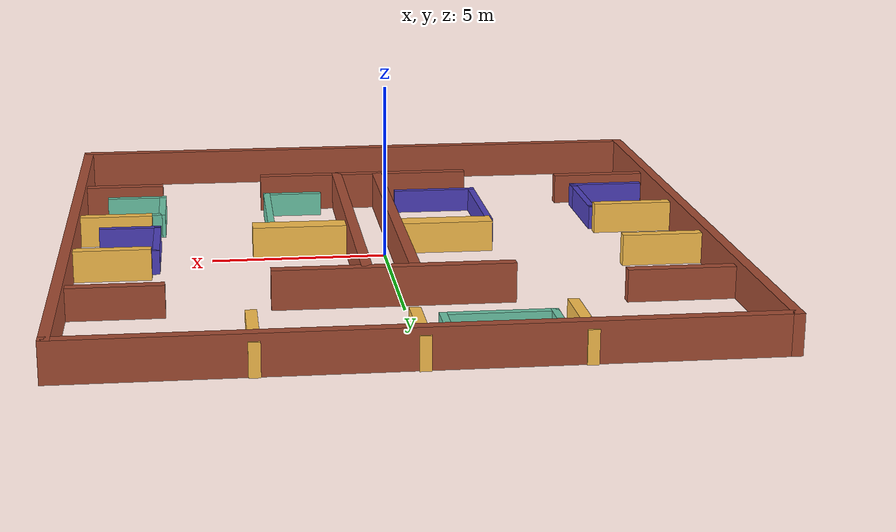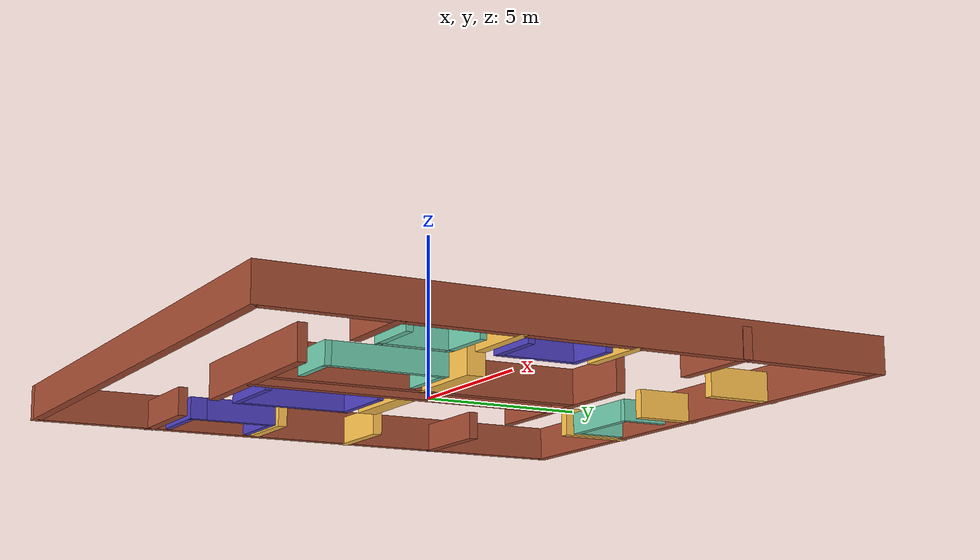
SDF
<?xml version='1.0'?>
<sdf version='1.7'>
  <model name='parking'>
    <pose>-0.068695 0.08748 0 0 -0 0</pose>
    <link name='Wall_12'>
      <collision name='Wall_12_Collision'>
        <geometry>
          <box>
            <size>10.15 0.3 1.1</size>
          </box>
        </geometry>
        <pose>0 0 0.55 0 -0 0</pose>
      </collision>
      <visual name='Wall_12_Visual'>
        <pose>0 0 0.55 0 -0 0</pose>
        <geometry>
          <box>
            <size>10.15 0.3 1.1</size>
          </box>
        </geometry>
        <material>
          <script>
            <uri>file://media/materials/scripts/gazebo.material</uri>
            <name>Gazebo/Bricks</name>
          </script>
          <ambient>1 1 1 1</ambient>
        </material>
        <meta>
          <layer>0</layer>
        </meta>
      </visual>
      <pose>-0.256305 -0.628008 0 0 -0 -1.5708</pose>
    </link>
    <link name='Wall_14'>
      <collision name='Wall_14_Collision'>
        <geometry>
          <box>
            <size>10.15 0.3 1.1</size>
          </box>
        </geometry>
        <pose>0 0 0.55 0 -0 0</pose>
      </collision>
      <visual name='Wall_14_Visual'>
        <pose>0 0 0.55 0 -0 0</pose>
        <geometry>
          <box>
            <size>10.15 0.3 1.1</size>
          </box>
        </geometry>
        <material>
          <script>
            <uri>file://media/materials/scripts/gazebo.material</uri>
            <name>Gazebo/Bricks</name>
          </script>
          <ambient>1 1 1 1</ambient>
        </material>
        <meta>
          <layer>0</layer>
        </meta>
      </visual>
      <pose>1.0272 -0.68151 0 0 -0 -1.5708</pose>
    </link>
    <link name='Wall_2'>
      <collision name='Wall_2_Collision'>
        <geometry>
          <box>
            <size>18.9001 0.3 1.1</size>
          </box>
        </geometry>
        <pose>0 0 0.55 0 -0 0</pose>
      </collision>
      <visual name='Wall_2_Visual'>
        <pose>0 0 0.55 0 -0 0</pose>
        <geometry>
          <box>
            <size>18.9001 0.3 1.1</size>
          </box>
        </geometry>
        <material>
          <script>
            <uri>file://media/materials/scripts/gazebo.material</uri>
            <name>Gazebo/Bricks</name>
          </script>
          <ambient>1 1 1 1</ambient>
        </material>
        <meta>
          <layer>0</layer>
        </meta>
      </visual>
      <pose>-9.03131 -0.02648 0 0 -0 -1.5708</pose>
    </link>
    <link name='Wall_22'>
      <collision name='Wall_22_Collision'>
        <geometry>
          <box>
            <size>3.2 0.3 0.9</size>
          </box>
        </geometry>
        <pose>0 0 0.45 0 -0 0</pose>
      </collision>
      <visual name='Wall_22_Visual'>
        <pose>0 0 0.45 0 -0 0</pose>
        <geometry>
          <box>
            <size>3.2 0.3 0.9</size>
          </box>
        </geometry>
        <material>
          <script>
            <uri>file://media/materials/scripts/gazebo.material</uri>
            <name>Gazebo/Bricks</name>
          </script>
          <ambient>1 1 1 1</ambient>
        </material>
        <meta>
          <layer>0</layer>
        </meta>
      </visual>
      <pose>-7.6348 -5.547 0 0 -0 0</pose>
    </link>
    <link name='Wall_24'>
      <collision name='Wall_24_Collision'>
        <geometry>
          <box>
            <size>6.55 0.3 1.1</size>
          </box>
        </geometry>
        <pose>0 0 0.55 0 -0 0</pose>
      </collision>
      <visual name='Wall_24_Visual'>
        <pose>0 0 0.55 0 -0 0</pose>
        <geometry>
          <box>
            <size>6.55 0.3 1.1</size>
          </box>
        </geometry>
        <material>
          <script>
            <uri>file://media/materials/scripts/gazebo.material</uri>
            <name>Gazebo/Bricks</name>
          </script>
          <ambient>1 1 1 1</ambient>
        </material>
        <meta>
          <layer>0</layer>
        </meta>
      </visual>
      <pose>0.193192 -5.65451 0 0 -0 0</pose>
    </link>
    <link name='Wall_28'>
      <collision name='Wall_28_Collision'>
        <geometry>
          <box>
            <size>2.65 0.3 0.9</size>
          </box>
        </geometry>
        <pose>0 0 0.45 0 -0 0</pose>
      </collision>
      <visual name='Wall_28_Visual'>
        <pose>0 0 0.45 0 -0 0</pose>
        <geometry>
          <box>
            <size>2.65 0.3 0.9</size>
          </box>
        </geometry>
        <material>
          <script>
            <uri>file://media/materials/scripts/gazebo.material</uri>
            <name>Gazebo/Bricks</name>
          </script>
          <ambient>1 0.764706 0.305882 1</ambient>
        </material>
        <meta>
          <layer>0</layer>
        </meta>
      </visual>
      <pose>7.87419 -5.54751 0 0 -0 0</pose>
    </link>
    <link name='Wall_30'>
      <collision name='Wall_30_Collision'>
        <geometry>
          <box>
            <size>6.55 0.3 1.1</size>
          </box>
        </geometry>
        <pose>0 0 0.55 0 -0 0</pose>
      </collision>
      <visual name='Wall_30_Visual'>
        <pose>0 0 0.55 0 -0 0</pose>
        <geometry>
          <box>
            <size>6.55 0.3 1.1</size>
          </box>
        </geometry>
        <material>
          <script>
            <uri>file://media/materials/scripts/gazebo.material</uri>
            <name>Gazebo/Bricks</name>
          </script>
          <ambient>1 1 1 1</ambient>
        </material>
        <meta>
          <layer>0</layer>
        </meta>
      </visual>
      <pose>0.300695 4.40399 0 0 -0 0</pose>
    </link>
    <link name='Wall_32'>
      <collision name='Wall_32_Collision'>
        <geometry>
          <box>
            <size>3.15 0.3 0.9</size>
          </box>
        </geometry>
        <pose>0 0 0.45 0 -0 0</pose>
      </collision>
      <visual name='Wall_32_Visual'>
        <pose>0 0 0.45 0 -0 0</pose>
        <geometry>
          <box>
            <size>3.15 0.3 0.9</size>
          </box>
        </geometry>
        <material>
          <script>
            <uri>file://media/materials/scripts/gazebo.material</uri>
            <name>Gazebo/Bricks</name>
          </script>
          <ambient>1 1 1 1</ambient>
        </material>
        <meta>
          <layer>0</layer>
        </meta>
      </visual>
      <pose>-7.4988 4.725 0 0 -0 0</pose>
    </link>
    <link name='Wall_34'>
      <collision name='Wall_34_Collision'>
        <geometry>
          <box>
            <size>2.90022 0.3 0.9</size>
          </box>
        </geometry>
        <pose>0 0 0.45 0 -0 0</pose>
      </collision>
      <visual name='Wall_34_Visual'>
        <pose>0 0 0.45 0 -0 0</pose>
        <geometry>
          <box>
            <size>2.90022 0.3 0.9</size>
          </box>
        </geometry>
        <material>
          <script>
            <uri>file://media/materials/scripts/gazebo.material</uri>
            <name>Gazebo/Bricks</name>
          </script>
          <ambient>1 1 1 1</ambient>
        </material>
        <meta>
          <layer>0</layer>
        </meta>
      </visual>
      <pose>7.7847 4.72501 0 0 -0 0</pose>
    </link>
    <link name='Wall_36'>
      <collision name='Wall_36_Collision'>
        <geometry>
          <box>
            <size>2.95 0.6 0.9</size>
          </box>
        </geometry>
        <pose>0 0 0.45 0 -0 0</pose>
      </collision>
      <visual name='Wall_36_Visual'>
        <pose>0 0 0.45 0 -0 0</pose>
        <geometry>
          <box>
            <size>2.95 0.6 0.9</size>
          </box>
        </geometry>
        <material>
          <script>
            <uri>file://media/materials/scripts/gazebo.material</uri>
            <name>Gazebo/Grey</name>
          </script>
          <ambient>1 0.764706 0.305882 1</ambient>
        </material>
        <meta>
          <layer>0</layer>
        </meta>
      </visual>
      <pose>-1.64981 -0.571013 0 0 -0 0</pose>
    </link>
    <link name='Wall_38'>
      <collision name='Wall_38_Collision'>
        <geometry>
          <box>
            <size>2.95 0.6 0.9</size>
          </box>
        </geometry>
        <pose>0 0 0.45 0 -0 0</pose>
      </collision>
      <visual name='Wall_38_Visual'>
        <pose>0 0 0.45 0 -0 0</pose>
        <geometry>
          <box>
            <size>2.95 0.6 0.9</size>
          </box>
        </geometry>
        <material>
          <script>
            <uri>file://media/materials/scripts/gazebo.material</uri>
            <name>Gazebo/Grey</name>
          </script>
          <ambient>1 0.764706 0.305882 1</ambient>
        </material>
        <meta>
          <layer>0</layer>
        </meta>
      </visual>
      <pose>2.4167 -0.571013 0 0 -0 0</pose>
    </link>
    <link name='Wall_4'>
      <collision name='Wall_4_Collision'>
        <geometry>
          <box>
            <size>18.4 0.3 1.1</size>
          </box>
        </geometry>
        <pose>0 0 0.55 0 -0 0</pose>
      </collision>
      <visual name='Wall_4_Visual'>
        <pose>0 0 0.55 0 -0 0</pose>
        <geometry>
          <box>
            <size>18.4 0.3 1.1</size>
          </box>
        </geometry>
        <material>
          <script>
            <uri>file://media/materials/scripts/gazebo.material</uri>
            <name>Gazebo/Bricks</name>
          </script>
          <ambient>1 1 1 1</ambient>
        </material>
        <meta>
          <layer>0</layer>
        </meta>
      </visual>
      <pose>0.018695 -9.32648 0 0 -0 0</pose>
    </link>
    <link name='Wall_40'>
      <collision name='Wall_40_Collision'>
        <geometry>
          <box>
            <size>2.39994 0.3 0.9</size>
          </box>
        </geometry>
        <pose>0 0 0.45 0 -0 0</pose>
      </collision>
      <visual name='Wall_40_Visual'>
        <pose>0 0 0.45 0 -0 0</pose>
        <geometry>
          <box>
            <size>2.39994 0.3 0.9</size>
          </box>
        </geometry>
        <material>
          <script>
            <uri>file://media/materials/scripts/gazebo.material</uri>
            <name>Gazebo/Grey</name>
          </script>
          <ambient>1 0.764706 0.305882 1</ambient>
        </material>
        <meta>
          <layer>0</layer>
        </meta>
      </visual>
      <pose>-3.94831 8.27652 0 0 -0 -1.5708</pose>
    </link>
    <link name='Wall_44'>
      <collision name='Wall_44_Collision'>
        <geometry>
          <box>
            <size>2.4 0.3 0.9</size>
          </box>
        </geometry>
        <pose>0 0 0.45 0 -0 0</pose>
      </collision>
      <visual name='Wall_44_Visual'>
        <pose>0 0 0.45 0 -0 0</pose>
        <geometry>
          <box>
            <size>2.4 0.3 0.9</size>
          </box>
        </geometry>
        <material>
          <script>
            <uri>file://media/materials/scripts/gazebo.material</uri>
            <name>Gazebo/Grey</name>
          </script>
          <ambient>1 0.764706 0.305882 1</ambient>
        </material>
        <meta>
          <layer>0</layer>
        </meta>
      </visual>
      <pose>4.18469 8.27652 0 0 -0 -1.5708</pose>
    </link>
    <link name='Wall_46'>
      <collision name='Wall_46_Collision'>
        <geometry>
          <box>
            <size>2.14994 0.3 0.9</size>
          </box>
        </geometry>
        <pose>0 0 0.45 0 -0 0</pose>
      </collision>
      <visual name='Wall_46_Visual'>
        <pose>0 0 0.45 0 -0 0</pose>
        <geometry>
          <box>
            <size>2.14994 0.3 0.9</size>
          </box>
        </geometry>
        <material>
          <script>
            <uri>file://media/materials/scripts/gazebo.material</uri>
            <name>Gazebo/Grey</name>
          </script>
          <ambient>1 0.764706 0.305882 1</ambient>
        </material>
        <meta>
          <layer>0</layer>
        </meta>
      </visual>
      <pose>0.117695 8.40152 0 0 -0 -1.5708</pose>
    </link>
    <link name='Wall_48'>
      <collision name='Wall_48_Collision'>
        <geometry>
          <box>
            <size>2.65 0.3 0.9</size>
          </box>
        </geometry>
        <pose>0 0 0.45 0 -0 0</pose>
      </collision>
      <visual name='Wall_48_Visual'>
        <pose>0 0 0.45 0 -0 0</pose>
        <geometry>
          <box>
            <size>2.65 0.3 0.9</size>
          </box>
        </geometry>
        <material>
          <script>
            <uri>file://media/materials/scripts/gazebo.material</uri>
            <name>Gazebo/Grey</name>
          </script>
          <ambient>1 0.764706 0.305882 1</ambient>
        </material>
        <meta>
          <layer>0</layer>
        </meta>
      </visual>
      <pose>-7.90931 1.46199 0 0 -0 0</pose>
    </link>
    <link name='Wall_50'>
      <collision name='Wall_50_Collision'>
        <geometry>
          <box>
            <size>2.65049 0.3 0.9</size>
          </box>
        </geometry>
        <pose>0 0 0.45 0 -0 0</pose>
      </collision>
      <visual name='Wall_50_Visual'>
        <pose>0 0 0.45 0 -0 0</pose>
        <geometry>
          <box>
            <size>2.65049 0.3 0.9</size>
          </box>
        </geometry>
        <material>
          <script>
            <uri>file://media/materials/scripts/gazebo.material</uri>
            <name>Gazebo/Grey</name>
          </script>
          <ambient>1 0.764706 0.305882 1</ambient>
        </material>
        <meta>
          <layer>0</layer>
        </meta>
      </visual>
      <pose>-7.85631 -1.96198 0 0 -0 0</pose>
    </link>
    <link name='Wall_52'>
      <collision name='Wall_52_Collision'>
        <geometry>
          <box>
            <size>2.4 0.3 0.9</size>
          </box>
        </geometry>
        <pose>0 0 0.45 0 -0 0</pose>
      </collision>
      <visual name='Wall_52_Visual'>
        <pose>0 0 0.45 0 -0 0</pose>
        <geometry>
          <box>
            <size>2.4 0.3 0.9</size>
          </box>
        </geometry>
        <material>
          <script>
            <uri>file://media/materials/scripts/gazebo.material</uri>
            <name>Gazebo/Grey</name>
          </script>
          <ambient>1 0.764706 0.305882 1</ambient>
        </material>
        <meta>
          <layer>0</layer>
        </meta>
      </visual>
      <pose>7.9632 1.4085 0 0 -0 0</pose>
    </link>
    <link name='Wall_54'>
      <collision name='Wall_54_Collision'>
        <geometry>
          <box>
            <size>2.4 0.3 0.9</size>
          </box>
        </geometry>
        <pose>0 0 0.45 0 -0 0</pose>
      </collision>
      <visual name='Wall_54_Visual'>
        <pose>0 0 0.45 0 -0 0</pose>
        <geometry>
          <box>
            <size>2.4 0.3 0.9</size>
          </box>
        </geometry>
        <material>
          <script>
            <uri>file://media/materials/scripts/gazebo.material</uri>
            <name>Gazebo/Grey</name>
          </script>
          <ambient>1 0.764706 0.305882 1</ambient>
        </material>
        <meta>
          <layer>0</layer>
        </meta>
      </visual>
      <pose>8.0167 -2.069 0 0 -0 0</pose>
    </link>
    <link name='Wall_56'>
      <collision name='Wall_56_Collision'>
        <geometry>
          <box>
            <size>2.05 0.2 0.7</size>
          </box>
        </geometry>
        <pose>0 0 0.35 0 -0 0</pose>
      </collision>
      <visual name='Wall_56_Visual'>
        <pose>0 0 0.35 0 -0 0</pose>
        <geometry>
          <box>
            <size>2.05 0.2 0.7</size>
          </box>
        </geometry>
        <material>
          <script>
            <uri>file://media/materials/scripts/gazebo.material</uri>
            <name>Gazebo/Grey</name>
          </script>
          <ambient>0.435294 0.796078 0.67451 1</ambient>
        </material>
        <meta>
          <layer>0</layer>
        </meta>
      </visual>
      <pose>2.38069 -1.26648 0 0 -0 0</pose>
    </link>
    <link name='Wall_57'>
      <collision name='Wall_57_Collision'>
        <geometry>
          <box>
            <size>3.8 0.2 0.7</size>
          </box>
        </geometry>
        <pose>0 0 0.35 0 -0 0</pose>
      </collision>
      <visual name='Wall_57_Visual'>
        <pose>0 0 0.35 0 -0 0</pose>
        <geometry>
          <box>
            <size>3.8 0.2 0.7</size>
          </box>
        </geometry>
        <material>
          <script>
            <uri>file://media/materials/scripts/gazebo.material</uri>
            <name>Gazebo/Grey</name>
          </script>
          <ambient>0.435294 0.796078 0.67451 1</ambient>
        </material>
        <meta>
          <layer>0</layer>
        </meta>
      </visual>
      <pose>3.3057 -3.06648 0 0 -0 -1.5708</pose>
    </link>
    <link name='Wall_58'>
      <collision name='Wall_58_Collision'>
        <geometry>
          <box>
            <size>1.80002 0.2 0.7</size>
          </box>
        </geometry>
        <pose>0 0 0.35 0 -0 0</pose>
      </collision>
      <visual name='Wall_58_Visual'>
        <pose>0 0 0.35 0 -0 0</pose>
        <geometry>
          <box>
            <size>1.80002 0.2 0.7</size>
          </box>
        </geometry>
        <material>
          <script>
            <uri>file://media/materials/scripts/gazebo.material</uri>
            <name>Gazebo/Grey</name>
          </script>
          <ambient>0.435294 0.796078 0.67451 1</ambient>
        </material>
        <meta>
          <layer>0</layer>
        </meta>
      </visual>
      <pose>2.50569 -4.86648 0 0 -0 3.14159</pose>
    </link>
    <link name='Wall_61'>
      <collision name='Wall_61_Collision'>
        <geometry>
          <box>
            <size>1.80088 0.2 0.7</size>
          </box>
        </geometry>
        <pose>0 0 0.35 0 -0 0</pose>
      </collision>
      <visual name='Wall_61_Visual'>
        <pose>0 0 0.35 0 -0 0</pose>
        <geometry>
          <box>
            <size>1.80088 0.2 0.7</size>
          </box>
        </geometry>
        <material>
          <script>
            <uri>file://media/materials/scripts/gazebo.material</uri>
            <name>Gazebo/Grey</name>
          </script>
          <ambient>0.435294 0.796078 0.67451 1</ambient>
        </material>
        <meta>
          <layer>0</layer>
        </meta>
      </visual>
      <pose>7.3437 -2.79198 0 0 -0 -3.10848</pose>
    </link>
    <link name='Wall_62'>
      <collision name='Wall_62_Collision'>
        <geometry>
          <box>
            <size>2.22899 0.2 0.7</size>
          </box>
        </geometry>
        <pose>0 0 0.35 0 -0 0</pose>
      </collision>
      <visual name='Wall_62_Visual'>
        <pose>0 0 0.35 0 -0 0</pose>
        <geometry>
          <box>
            <size>2.22899 0.2 0.7</size>
          </box>
        </geometry>
        <material>
          <script>
            <uri>file://media/materials/scripts/gazebo.material</uri>
            <name>Gazebo/Grey</name>
          </script>
          <ambient>0.435294 0.796078 0.67451 1</ambient>
        </material>
        <meta>
          <layer>0</layer>
        </meta>
      </visual>
      <pose>6.54369 -3.83298 0 0 -0 -1.5708</pose>
    </link>
    <link name='Wall_63'>
      <collision name='Wall_63_Collision'>
        <geometry>
          <box>
            <size>1.79979 0.2 0.7</size>
          </box>
        </geometry>
        <pose>0 0 0.35 0 -0 0</pose>
      </collision>
      <visual name='Wall_63_Visual'>
        <pose>0 0 0.35 0 -0 0</pose>
        <geometry>
          <box>
            <size>1.79979 0.2 0.7</size>
          </box>
        </geometry>
        <material>
          <script>
            <uri>file://media/materials/scripts/gazebo.material</uri>
            <name>Gazebo/Grey</name>
          </script>
          <ambient>0.435294 0.796078 0.67451 1</ambient>
        </material>
        <meta>
          <layer>0</layer>
        </meta>
      </visual>
      <pose>7.3437 -4.84748 0 0 -0 0</pose>
    </link>
    <link name='Wall_65'>
      <collision name='Wall_65_Collision'>
        <geometry>
          <box>
            <size>1.8 0.2 0.7</size>
          </box>
        </geometry>
        <pose>0 0 0.35 0 -0 0</pose>
      </collision>
      <visual name='Wall_65_Visual'>
        <pose>0 0 0.35 0 -0 0</pose>
        <geometry>
          <box>
            <size>1.8 0.2 0.7</size>
          </box>
        </geometry>
        <material>
          <script>
            <uri>file://media/materials/scripts/gazebo.material</uri>
            <name>Gazebo/Grey</name>
          </script>
          <ambient>0.305882 0.25098 0.74902 1</ambient>
        </material>
        <meta>
          <layer>0</layer>
        </meta>
      </visual>
      <pose>7.45069 0.92652 0 0 -0 3.14159</pose>
    </link>
    <link name='Wall_66'>
      <collision name='Wall_66_Collision'>
        <geometry>
          <box>
            <size>2.54983 0.2 0.7</size>
          </box>
        </geometry>
        <pose>0 0 0.35 0 -0 0</pose>
      </collision>
      <visual name='Wall_66_Visual'>
        <pose>0 0 0.35 0 -0 0</pose>
        <geometry>
          <box>
            <size>2.54983 0.2 0.7</size>
          </box>
        </geometry>
        <material>
          <script>
            <uri>file://media/materials/scripts/gazebo.material</uri>
            <name>Gazebo/Grey</name>
          </script>
          <ambient>0.305882 0.25098 0.74902 1</ambient>
        </material>
        <meta>
          <layer>0</layer>
        </meta>
      </visual>
      <pose>6.65069 -0.24848 0 0 -0 -1.5708</pose>
    </link>
    <link name='Wall_67'>
      <collision name='Wall_67_Collision'>
        <geometry>
          <box>
            <size>1.7998 0.2 0.7</size>
          </box>
        </geometry>
        <pose>0 0 0.35 0 -0 0</pose>
      </collision>
      <visual name='Wall_67_Visual'>
        <pose>0 0 0.35 0 -0 0</pose>
        <geometry>
          <box>
            <size>1.7998 0.2 0.7</size>
          </box>
        </geometry>
        <material>
          <script>
            <uri>file://media/materials/scripts/gazebo.material</uri>
            <name>Gazebo/Grey</name>
          </script>
          <ambient>0.305882 0.25098 0.74902 1</ambient>
        </material>
        <meta>
          <layer>0</layer>
        </meta>
      </visual>
      <pose>7.45069 -1.42348 0 0 -0 0</pose>
    </link>
    <link name='Wall_69'>
      <collision name='Wall_69_Collision'>
        <geometry>
          <box>
            <size>2.55 0.2 0.7</size>
          </box>
        </geometry>
        <pose>0 0 0.35 0 -0 0</pose>
      </collision>
      <visual name='Wall_69_Visual'>
        <pose>0 0 0.35 0 -0 0</pose>
        <geometry>
          <box>
            <size>2.55 0.2 0.7</size>
          </box>
        </geometry>
        <material>
          <script>
            <uri>file://media/materials/scripts/gazebo.material</uri>
            <name>Gazebo/Grey</name>
          </script>
          <ambient>0.305882 0.25098 0.74902 1</ambient>
        </material>
        <meta>
          <layer>0</layer>
        </meta>
      </visual>
      <pose>-2.02031 -1.26648 0 0 -0 3.14159</pose>
    </link>
    <link name='Wall_7'>
      <collision name='Wall_7_Collision'>
        <geometry>
          <box>
            <size>18.8996 0.3 1.1</size>
          </box>
        </geometry>
        <pose>0 0 0.55 0 -0 0</pose>
      </collision>
      <visual name='Wall_7_Visual'>
        <pose>0 0 0.55 0 -0 0</pose>
        <geometry>
          <box>
            <size>18.8996 0.3 1.1</size>
          </box>
        </geometry>
        <material>
          <script>
            <uri>file://media/materials/scripts/gazebo.material</uri>
            <name>Gazebo/Bricks</name>
          </script>
          <ambient>1 1 1 1</ambient>
        </material>
        <meta>
          <layer>0</layer>
        </meta>
      </visual>
      <pose>9.06869 -0.02648 0 0 -0 1.5708</pose>
    </link>
    <link name='Wall_70'>
      <collision name='Wall_70_Collision'>
        <geometry>
          <box>
            <size>3.8 0.2 0.7</size>
          </box>
        </geometry>
        <pose>0 0 0.35 0 -0 0</pose>
      </collision>
      <visual name='Wall_70_Visual'>
        <pose>0 0 0.35 0 -0 0</pose>
        <geometry>
          <box>
            <size>3.8 0.2 0.7</size>
          </box>
        </geometry>
        <material>
          <script>
            <uri>file://media/materials/scripts/gazebo.material</uri>
            <name>Gazebo/Grey</name>
          </script>
          <ambient>0.305882 0.25098 0.74902 1</ambient>
        </material>
        <meta>
          <layer>0</layer>
        </meta>
      </visual>
      <pose>-3.1953 -3.06648 0 0 -0 -1.5708</pose>
    </link>
    <link name='Wall_71'>
      <collision name='Wall_71_Collision'>
        <geometry>
          <box>
            <size>2.55037 0.2 0.7</size>
          </box>
        </geometry>
        <pose>0 0 0.35 0 -0 0</pose>
      </collision>
      <visual name='Wall_71_Visual'>
        <pose>0 0 0.35 0 -0 0</pose>
        <geometry>
          <box>
            <size>2.55037 0.2 0.7</size>
          </box>
        </geometry>
        <material>
          <script>
            <uri>file://media/materials/scripts/gazebo.material</uri>
            <name>Gazebo/Grey</name>
          </script>
          <ambient>0.305882 0.25098 0.74902 1</ambient>
        </material>
        <meta>
          <layer>0</layer>
        </meta>
      </visual>
      <pose>-2.02031 -4.86648 0 0 -0 0</pose>
    </link>
    <link name='Wall_73'>
      <collision name='Wall_73_Collision'>
        <geometry>
          <box>
            <size>2.3 0.2 0.7</size>
          </box>
        </geometry>
        <pose>0 0 0.35 0 -0 0</pose>
      </collision>
      <visual name='Wall_73_Visual'>
        <pose>0 0 0.35 0 -0 0</pose>
        <geometry>
          <box>
            <size>2.3 0.2 0.7</size>
          </box>
        </geometry>
        <material>
          <script>
            <uri>file://media/materials/scripts/gazebo.material</uri>
            <name>Gazebo/Grey</name>
          </script>
          <ambient>0.305882 0.25098 0.74902 1</ambient>
        </material>
        <meta>
          <layer>0</layer>
        </meta>
      </visual>
      <pose>-7.60631 -2.33648 0 0 -0 0</pose>
    </link>
    <link name='Wall_74'>
      <collision name='Wall_74_Collision'>
        <geometry>
          <box>
            <size>2.55049 0.2 0.7</size>
          </box>
        </geometry>
        <pose>0 0 0.35 0 -0 0</pose>
      </collision>
      <visual name='Wall_74_Visual'>
        <pose>0 0 0.35 0 -0 0</pose>
        <geometry>
          <box>
            <size>2.55049 0.2 0.7</size>
          </box>
        </geometry>
        <material>
          <script>
            <uri>file://media/materials/scripts/gazebo.material</uri>
            <name>Gazebo/Grey</name>
          </script>
          <ambient>0.305882 0.25098 0.74902 1</ambient>
        </material>
        <meta>
          <layer>0</layer>
        </meta>
      </visual>
      <pose>-6.55631 -3.51148 0 0 -0 -1.5708</pose>
    </link>
    <link name='Wall_75'>
      <collision name='Wall_75_Collision'>
        <geometry>
          <box>
            <size>0.55 0.2 0.7</size>
          </box>
        </geometry>
        <pose>0 0 0.35 0 -0 0</pose>
      </collision>
      <visual name='Wall_75_Visual'>
        <pose>0 0 0.35 0 -0 0</pose>
        <geometry>
          <box>
            <size>0.55 0.2 0.7</size>
          </box>
        </geometry>
        <material>
          <script>
            <uri>file://media/materials/scripts/gazebo.material</uri>
            <name>Gazebo/Grey</name>
          </script>
          <ambient>0.305882 0.25098 0.74902 1</ambient>
        </material>
        <meta>
          <layer>0</layer>
        </meta>
      </visual>
      <pose>-6.55631 -4.86148 0 0 -0 -1.5708</pose>
    </link>
    <link name='Wall_76'>
      <collision name='Wall_76_Collision'>
        <geometry>
          <box>
            <size>2.29999 0.2 0.7</size>
          </box>
        </geometry>
        <pose>0 0 0.35 0 -0 0</pose>
      </collision>
      <visual name='Wall_76_Visual'>
        <pose>0 0 0.35 0 -0 0</pose>
        <geometry>
          <box>
            <size>2.29999 0.2 0.7</size>
          </box>
        </geometry>
        <material>
          <script>
            <uri>file://media/materials/scripts/gazebo.material</uri>
            <name>Gazebo/Grey</name>
          </script>
          <ambient>0.305882 0.25098 0.74902 1</ambient>
        </material>
        <meta>
          <layer>0</layer>
        </meta>
      </visual>
      <pose>-7.60631 -5.03648 0 0 -0 3.14159</pose>
    </link>
    <link name='Wall_8'>
      <collision name='Wall_8_Collision'>
        <geometry>
          <box>
            <size>18.3995 0.3 1.1</size>
          </box>
        </geometry>
        <pose>0 0 0.55 0 -0 0</pose>
      </collision>
      <visual name='Wall_8_Visual'>
        <pose>0 0 0.55 0 -0 0</pose>
        <geometry>
          <box>
            <size>18.3995 0.3 1.1</size>
          </box>
        </geometry>
        <material>
          <script>
            <uri>file://media/materials/scripts/gazebo.material</uri>
            <name>Gazebo/Bricks</name>
          </script>
          <ambient>1 1 1 1</ambient>
        </material>
        <meta>
          <layer>0</layer>
        </meta>
      </visual>
      <pose>0.018695 9.27352 0 0 -0 3.14159</pose>
    </link>
    <link name='Wall_85'>
      <collision name='Wall_85_Collision'>
        <geometry>
          <box>
            <size>1.8 0.2 0.7</size>
          </box>
        </geometry>
        <pose>0 0 0.35 0 -0 0</pose>
      </collision>
      <visual name='Wall_85_Visual'>
        <pose>0 0 0.35 0 -0 0</pose>
        <geometry>
          <box>
            <size>1.8 0.2 0.7</size>
          </box>
        </geometry>
        <material>
          <script>
            <uri>file://media/materials/scripts/gazebo.material</uri>
            <name>Gazebo/Grey</name>
          </script>
          <ambient>0.435294 0.796078 0.67451 1</ambient>
        </material>
        <meta>
          <layer>0</layer>
        </meta>
      </visual>
      <pose>-3.44631 8.09852 0 0 -0 -1.5708</pose>
    </link>
    <link name='Wall_86'>
      <collision name='Wall_86_Collision'>
        <geometry>
          <box>
            <size>3.0497 0.2 0.7</size>
          </box>
        </geometry>
        <pose>0 0 0.35 0 -0 0</pose>
      </collision>
      <visual name='Wall_86_Visual'>
        <pose>0 0 0.35 0 -0 0</pose>
        <geometry>
          <box>
            <size>3.0497 0.2 0.7</size>
          </box>
        </geometry>
        <material>
          <script>
            <uri>file://media/materials/scripts/gazebo.material</uri>
            <name>Gazebo/Grey</name>
          </script>
          <ambient>0.435294 0.796078 0.67451 1</ambient>
        </material>
        <meta>
          <layer>0</layer>
        </meta>
      </visual>
      <pose>-2.0213 7.29852 0 0 -0 0</pose>
    </link>
    <link name='Wall_87'>
      <collision name='Wall_87_Collision'>
        <geometry>
          <box>
            <size>1.55013 0.2 0.7</size>
          </box>
        </geometry>
        <pose>0 0 0.35 0 -0 0</pose>
      </collision>
      <visual name='Wall_87_Visual'>
        <pose>0 0 0.35 0 -0 0</pose>
        <geometry>
          <box>
            <size>1.55013 0.2 0.7</size>
          </box>
        </geometry>
        <material>
          <script>
            <uri>file://media/materials/scripts/gazebo.material</uri>
            <name>Gazebo/Grey</name>
          </script>
          <ambient>0.435294 0.796078 0.67451 1</ambient>
        </material>
        <meta>
          <layer>0</layer>
        </meta>
      </visual>
      <pose>-0.596305 7.97352 0 0 -0 1.5708</pose>
    </link>
    <static>1</static>
  </model>
</sdf>
